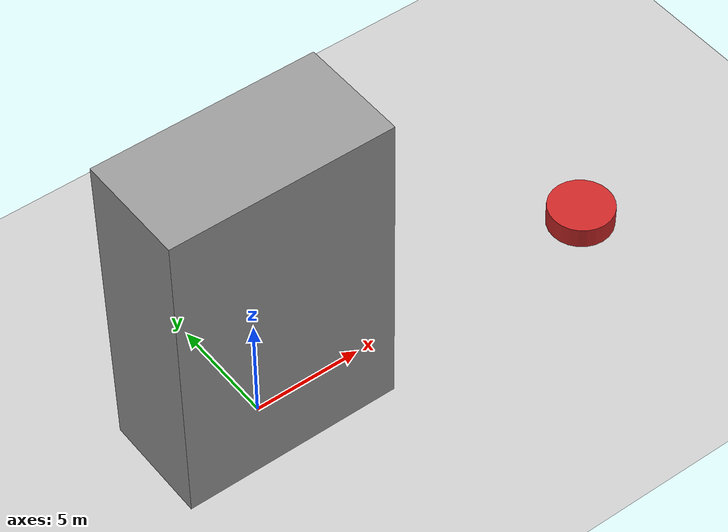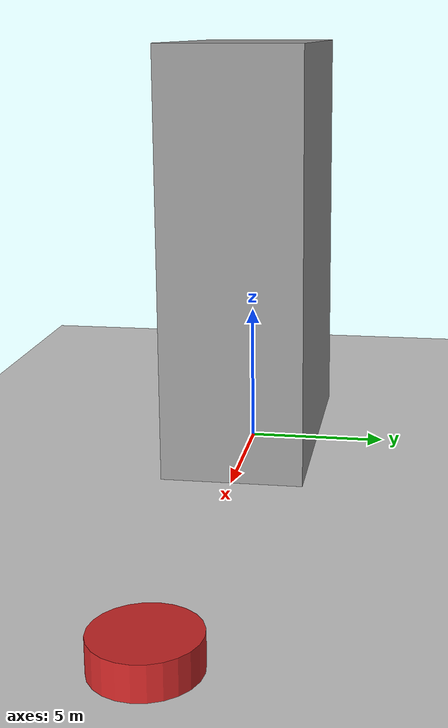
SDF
<sdf version="1.7">
 <world name="default">
  <plugin name="set_entity_state_plugin" filename="libset_entity_state.so">
   <robot_name>my_robot</robot_name>
  </plugin>
  <plugin name="gazebo_ros_state" filename="libgazebo_ros_state.so">
   <ros><argument>model_states:=model_states_demo</argument></ros>
   <update_rate>10.0</update_rate>
  </plugin>
  <light name="sun" type="directional">
   <pose>0 0 10 0 -0 0</pose>
   <diffuse>0.8 0.8 0.8 1</diffuse>
   <specular>0.2 0.2 0.2 1</specular>
   <attenuation>
    <range>1000</range>
    <constant>0.9</constant>
    <linear>0.01</linear>
    <quadratic>0.001</quadratic>
   </attenuation>
   <direction>-0.5 0.1 -0.9</direction>
   <spot><inner_angle>0</inner_angle><outer_angle>0</outer_angle><falloff>0</falloff></spot>
  </light>
  <model name="ground_plane">
   <static>1</static>
   <link name="link">
    <collision name="collision">
     <geometry><plane><normal>0 0 1</normal><size>100 100</size></plane></geometry>
     <surface>
      <contact><collide_bitmask>65535</collide_bitmask></contact>
      <friction><ode><mu>100</mu><mu2>50</mu2></ode></friction>
     </surface>
    </collision>
    <visual name="visual">
     <cast_shadows>0</cast_shadows>
     <geometry><plane><normal>0 0 1</normal><size>100 100</size></plane></geometry>
     <material>
      <script><uri>file://media/materials/scripts/gazebo.material</uri><name>Gazebo/Grey</name></script>
     </material>
    </visual>
   </link>
  </model>
  <gravity>0 0 -1</gravity>
  <magnetic_field>6e-06 2.3e-05 -4.2e-05</magnetic_field>
  <atmosphere type="adiabatic"/>
  <physics type="ode">
   <max_step_size>0.001</max_step_size>
   <real_time_factor>1</real_time_factor>
   <real_time_update_rate>1000</real_time_update_rate>
  </physics>
  <scene><ambient>0.4 0.4 0.4 1</ambient><background>0.7 0.7 0.7 1</background><shadows>1</shadows></scene>
  <audio><device>default</device></audio>
  <spherical_coordinates>
   <surface_model>EARTH_WGS84</surface_model>
   <latitude_deg>0</latitude_deg>
   <longitude_deg>0</longitude_deg>
   <elevation>0</elevation>
   <heading_deg>0</heading_deg>
  </spherical_coordinates>
  <model name="cliff_box">
   <link name="link">
    <inertial>
     <mass>1</mass>
     <inertia>
      <ixx>0.166667</ixx>
      <ixy>0</ixy>
      <ixz>0</ixz>
      <iyy>0.166667</iyy>
      <iyz>0</iyz>
      <izz>0.166667</izz>
     </inertia>
    </inertial>
    <visual name="visual">
     <geometry><box><size>10 5 15</size></box></geometry>
     <material>
      <script><name>Gazebo/Grey</name><uri>file://media/materials/scripts/gazebo.material</uri></script>
      <shader type="pixel"><normal_map>__default__</normal_map></shader>
      <ambient>0.3 0.3 0.3 1</ambient>
      <diffuse>0.7 0.7 0.7 1</diffuse>
      <specular>0.01 0.01 0.01 1</specular>
      <emissive>0 0 0 1</emissive>
     </material>
    </visual>
    <collision name="collision">
     <geometry><box><size>10 5 15</size></box></geometry>
     <surface>
      <friction>
       <ode><mu>1</mu><mu2>1</mu2><fdir1>0 0 0</fdir1><slip1>0</slip1><slip2>0</slip2></ode>
       <torsional>
        <coefficient>1</coefficient>
        <patch_radius>0</patch_radius>
        <surface_radius>0</surface_radius>
        <use_patch_radius>1</use_patch_radius>
        <ode><slip>0</slip></ode>
       </torsional>
      </friction>
      <bounce><restitution_coefficient>0</restitution_coefficient><threshold>1e+06</threshold></bounce>
      <contact>
       <collide_without_contact>0</collide_without_contact>
       <collide_without_contact_bitmask>1</collide_without_contact_bitmask>
       <collide_bitmask>1</collide_bitmask>
       <ode>
        <soft_cfm>0</soft_cfm>
        <soft_erp>0.2</soft_erp>
        <kp>1e+13</kp>
        <kd>1</kd>
        <max_vel>0.01</max_vel>
        <min_depth>0</min_depth>
       </ode>
       <bullet>
        <split_impulse>1</split_impulse>
        <split_impulse_penetration_threshold>-0.01</split_impulse_penetration_threshold>
        <soft_cfm>0</soft_cfm>
        <soft_erp>0.2</soft_erp>
        <kp>1e+13</kp>
        <kd>1</kd>
       </bullet>
      </contact>
     </surface>
    </collision>
   </link>
   <static>1</static>
   <pose>0 0 7.5 0 -0 0</pose>
  </model>
  <model name="landing_pad">
   <link name="link">
    <inertial>
     <mass>1</mass>
     <inertia><ixx>0.145833</ixx><ixy>0</ixy><ixz>0</ixz><iyy>0.145833</iyy><iyz>0</iyz><izz>0.125</izz></inertia>
    </inertial>
    <visual name="visual">
     <geometry><cylinder><radius>1.5</radius><length>1</length></cylinder></geometry>
     <material>
      <script><name>Gazebo/Red</name><uri>file://media/materials/scripts/gazebo.material</uri></script>
      <shader type="pixel"><normal_map>__default__</normal_map></shader>
      <ambient>1 0 0 1</ambient>
      <diffuse>0.7 0.7 0.7 1</diffuse>
      <specular>0.01 0.01 0.01 1</specular>
      <emissive>0 0 0 1</emissive>
     </material>
    </visual>
    <collision name="collision">
     <geometry><cylinder><radius>1.5</radius><length>1</length></cylinder></geometry>
     <surface>
      <friction>
       <ode><mu>1</mu><mu2>1</mu2><fdir1>0 0 0</fdir1><slip1>0</slip1><slip2>0</slip2></ode>
       <torsional>
        <coefficient>1</coefficient>
        <patch_radius>0</patch_radius>
        <surface_radius>0</surface_radius>
        <use_patch_radius>1</use_patch_radius>
        <ode><slip>0</slip></ode>
       </torsional>
      </friction>
      <bounce><restitution_coefficient>0</restitution_coefficient><threshold>1e+06</threshold></bounce>
      <contact>
       <collide_without_contact>0</collide_without_contact>
       <collide_without_contact_bitmask>1</collide_without_contact_bitmask>
       <collide_bitmask>1</collide_bitmask>
       <ode>
        <soft_cfm>0</soft_cfm>
        <soft_erp>0.2</soft_erp>
        <kp>1e+13</kp>
        <kd>1</kd>
        <max_vel>0.01</max_vel>
        <min_depth>0</min_depth>
       </ode>
       <bullet>
        <split_impulse>1</split_impulse>
        <split_impulse_penetration_threshold>-0.01</split_impulse_penetration_threshold>
        <soft_cfm>0</soft_cfm>
        <soft_erp>0.2</soft_erp>
        <kp>1e+13</kp>
        <kd>1</kd>
       </bullet>
      </contact>
     </surface>
    </collision>
   </link>
   <static>0</static>
   <pose>17 2.4e-05 0.499999 1e-06 -1e-06 0.00176</pose>
  </model>
 </world>
</sdf>
